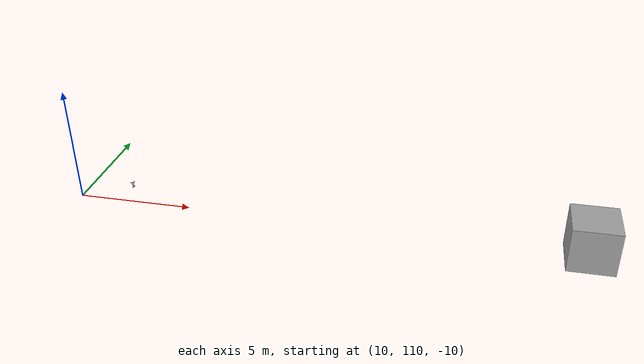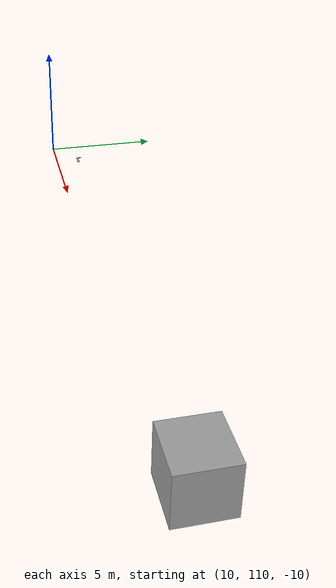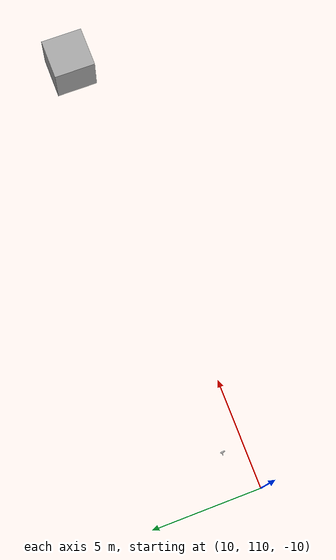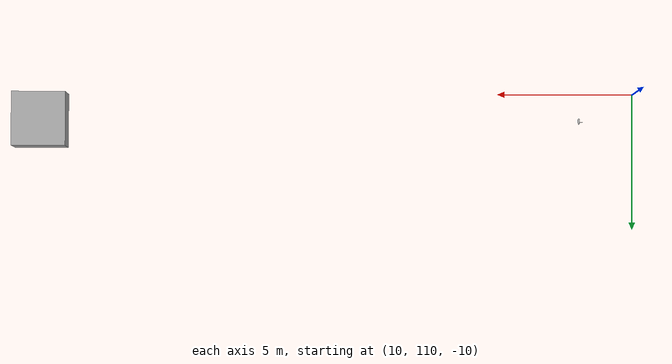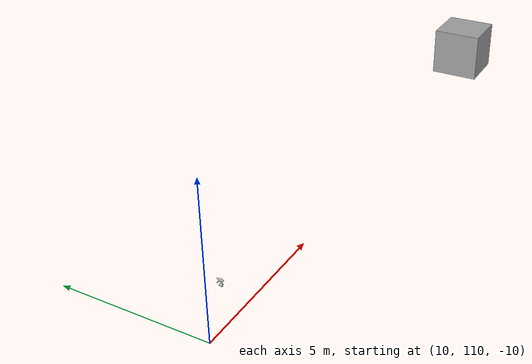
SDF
<?xml version="1.0" ?>
<!--
  Test world downloading two tile files
-->
<sdf version="1.6">
  <world name="collada_world_exporter_submesh_test">
    <physics name="fast" type="ignored">
      <real_time_factor>0</real_time_factor>
    </physics>

    <plugin
      filename="gz-sim-physics-system"
      name="gz::sim::systems::Physics">
    </plugin>

    <plugin
      filename="gz-sim-collada-world-exporter-system"
      name="gz::sim::systems::ColladaWorldExporter">
    </plugin>

    <include>
      <static>true</static>
      <pose>22 111 -10 0 -0 0</pose>
      <uri>model://mesh_with_submeshes</uri>
    </include>

  </world>
</sdf>

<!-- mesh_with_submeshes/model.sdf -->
<sdf version='1.6'>
  <model name='scheme_resource_uri'>
    <pose>0 0 1 0 0 0</pose>
    <link name='the_link'>
      <visual name='visual_submesh'>
        <geometry>
          <mesh>
            <uri>model://mesh_with_submeshes/meshes/mesh_with_submeshes.dae</uri>
            <submesh>
              <name>node_0</name>
              <center>false</center>
            </submesh>
          </mesh>
        </geometry>
      </visual>
      <visual name='the_visual'>
        <geometry>
          <mesh>
            <uri>model://mesh_with_submeshes/meshes/mesh_with_submeshes.dae</uri>
          </mesh>
        </geometry>
      </visual>
      <collision name='the_collision'>
        <geometry>
          <mesh>
            <uri>model://mesh_with_submeshes/meshes/mesh_with_submeshes.dae</uri>
          </mesh>
        </geometry>
      </collision>
    </link>
  </model>
</sdf>
